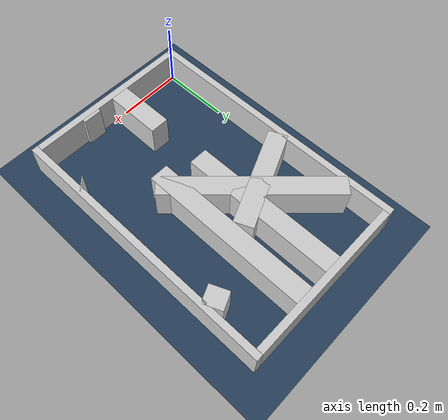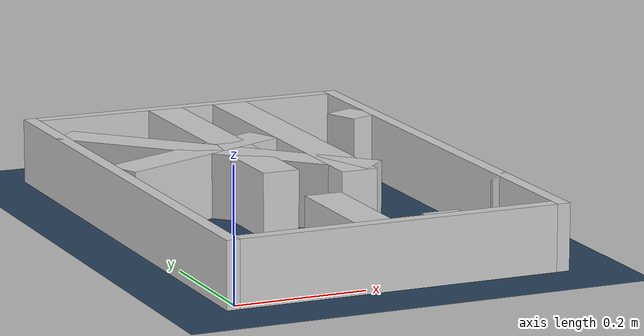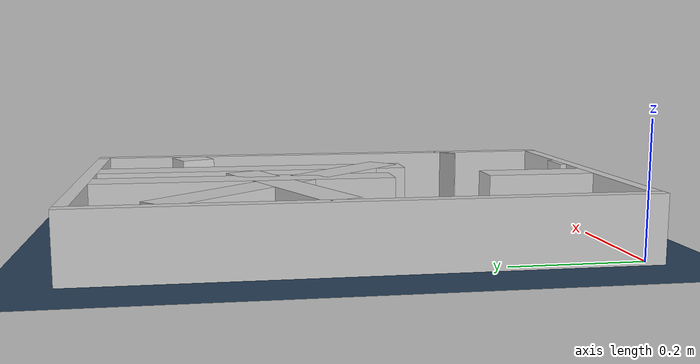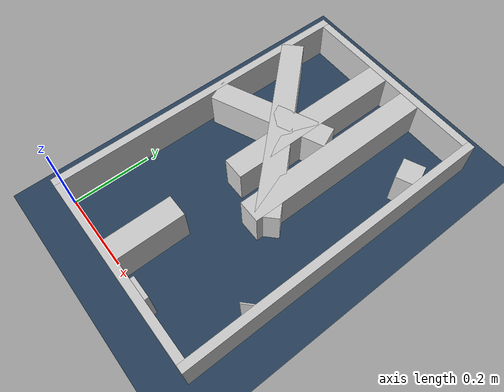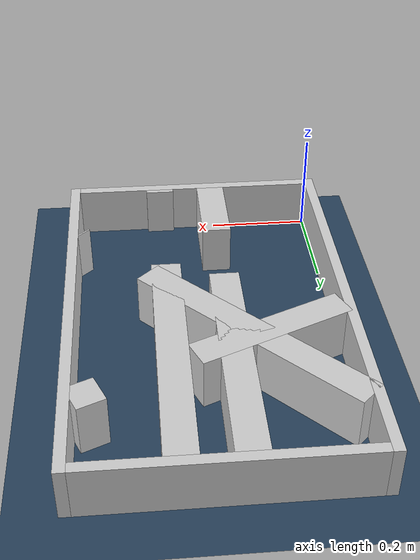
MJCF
<?xml version="1.0" ?>
<mujoco model="generated_real_template">
  <compiler angle="degree"/>
  <option timestep="0.002" integrator="implicitfast" iterations="100" cone="elliptic"/>
  <default>
    <geom density="1"/>
  </default>
  <asset>
    <texture builtin="gradient" height="3072" rgb1="0.3 0.5 0.7" rgb2="0 0 0" type="skybox" width="512"/>
    <texture builtin="checker" height="300" mark="edge" markrgb="0.8 0.8 0.8" name="groundplane" rgb1="0.2 0.3 0.4" rgb2="0.1 0.2 0.3" type="2d" width="300"/>
    <material name="groundplane" reflectance="0.2" texrepeat="5 5" texture="groundplane" texuniform="true"/>
  </asset>
  <worldbody>
    <light dir="0 0 -1" directional="true" pos="0 0 1.5"/>
    <geom name="floor" type="plane" condim="4" friction="0.5 0.005 0.001" material="groundplane" size="0 0 0.05"/>
    <body name="walls">
      <geom name="wall_boundary_left" type="box" condim="4" friction="1.0 0.005 0.0001" rgba="0.8 0.8 0.8 1" pos="-0.010000 0.387500 0.050000" euler="0 0 0.000000" size="0.010000 0.407500 0.050000"/>
      <geom name="wall_boundary_right" type="box" condim="4" friction="1.0 0.005 0.0001" rgba="0.8 0.8 0.8 1" pos="0.500000 0.387500 0.050000" euler="0 0 0.000000" size="0.010000 0.407500 0.050000"/>
      <geom name="wall_boundary_bottom" type="box" condim="4" friction="1.0 0.005 0.0001" rgba="0.8 0.8 0.8 1" pos="0.245000 -0.010000 0.050000" euler="0 0 0.000000" size="0.245000 0.010000 0.050000"/>
      <geom name="wall_boundary_top" type="box" condim="4" friction="1.0 0.005 0.0001" rgba="0.8 0.8 0.8 1" pos="0.245000 0.785000 0.050000" euler="0 0 0.000000" size="0.245000 0.010000 0.050000"/>
      <geom name="wall_inner_1_1" type="box" condim="4" friction="1.0 0.005 0.0001" rgba="0.8 0.8 0.8 1" pos="0.140145 0.486707 0.050000" euler="0 0 23.579438" size="0.152913 0.028500 0.050000"/>
      <geom name="wall_inner_1_2" type="box" condim="4" friction="1.0 0.005 0.0001" rgba="0.8 0.8 0.8 1" pos="0.465571 0.628743 0.050000" euler="0 0 23.579438" size="0.026654 0.028500 0.050000"/>
      <geom name="wall_inner_2_1" type="box" condim="4" friction="1.0 0.005 0.0001" rgba="0.8 0.8 0.8 1" pos="0.488420 0.164803 0.050000" euler="0 0 134.062203" size="0.001580 0.028500 0.050000"/>
      <geom name="wall_inner_2_2" type="box" condim="4" friction="1.0 0.005 0.0001" rgba="0.8 0.8 0.8 1" pos="0.177223 0.486358 0.050000" euler="0 0 134.062203" size="0.254145 0.028500 0.050000"/>
      <geom name="wall_inner_3_1" type="box" condim="4" friction="1.0 0.005 0.0001" rgba="0.8 0.8 0.8 1" pos="0.209373 0.084560 0.050000" euler="0 0 90.000000" size="0.084560 0.028500 0.050000"/>
      <geom name="wall_inner_3_2" type="box" condim="4" friction="1.0 0.005 0.0001" rgba="0.8 0.8 0.8 1" pos="0.209373 0.546952 0.050000" euler="0 0 90.000000" size="0.228048 0.028500 0.050000"/>
      <geom name="wall_inner_4_1" type="box" condim="4" friction="1.0 0.005 0.0001" rgba="0.8 0.8 0.8 1" pos="0.318469 0.005050 0.050000" euler="0 0 90.000000" size="0.005050 0.028500 0.050000"/>
      <geom name="wall_inner_4_2" type="box" condim="4" friction="1.0 0.005 0.0001" rgba="0.8 0.8 0.8 1" pos="0.318469 0.527619 0.050000" euler="0 0 90.000000" size="0.247381 0.028500 0.050000"/>
    </body>
  </worldbody>
</mujoco>
